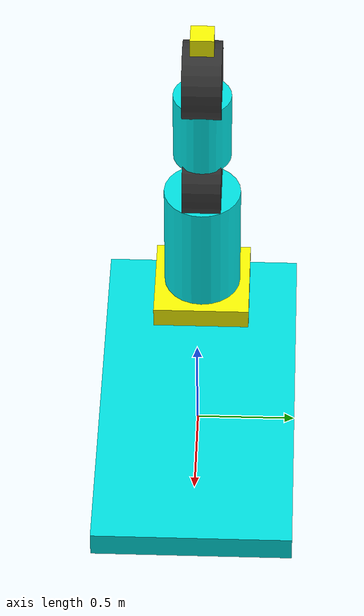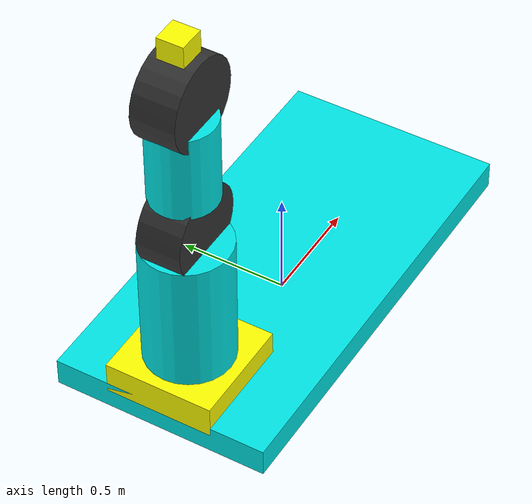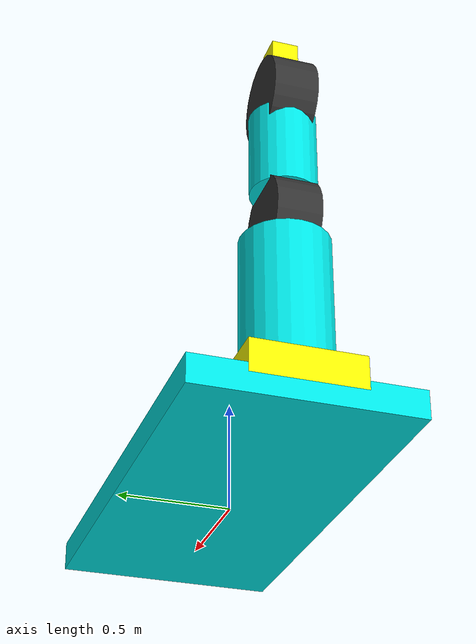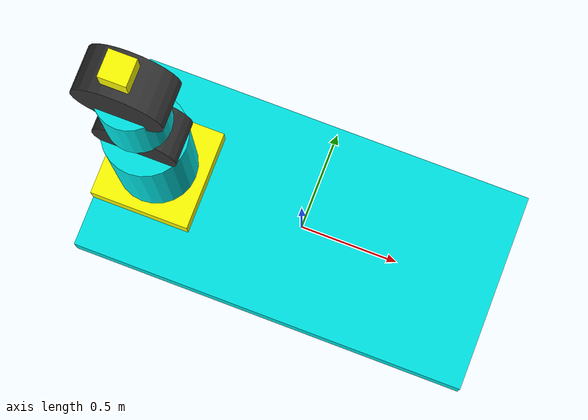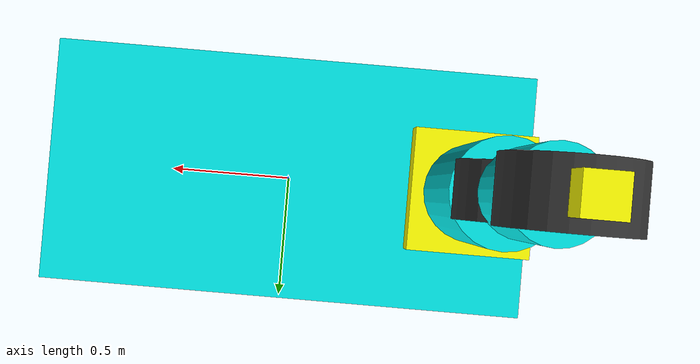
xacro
<?xml version = "1.0" ?>
<robot name="two_link" xmlns:xacro="http://www.ros.org/wiki/xacro">

<xacro:include filename="$(find robot_arm_pkg)/urdf/robot .gazebo" />

	<!-- * * * Link Definitions * * * -->

    <link  name= "world"></link>

    <joint name="base_joint" type="fixed">
        <origin xyz="0 0 0" rpy="0 0 0"/>
        <parent link="world"/>
        <child link="base_link"/>

    </joint>

 	<link name="base_link">
		<visual>
		    <origin xyz="0 0 0.1" rpy="0 0 0"/>
			<geometry>
				<box size="2 1 0.13"/>
			</geometry>
			<material name="Cyan1">
	       		<color rgba="0 0.9 0.9 1.0"/>
	     	</material>
		</visual>
		<collision>
		<origin xyz="0 0 0" rpy="0 0 0"/>
		<geometry>
		<box size="2 1 0.3"/>
		</geometry>
		</collision>
		<inertial>
		<origin xyz="0 0 0" rpy="0 0 0"/>
		<mass value="0.5"/>
		<inertia
		ixx="0.1" ixy="0.0" ixz="0.0"
		iyy="0.1" iyz="0.0"
		izz="0.1"/>
		</inertial>
</link>

    <joint name="slider_joint" type="prismatic">
        <origin xyz="-0.75 0 0.1" rpy="0 0 0"/>
        <parent link="base_link"/>
        <child link="slider_link"/>
        <axis xyz="1 0 0"/>
        <limit lower="0" upper="0.75" velocity="100" effort="100"/>
    </joint>

  	<link name="slider_link">
		<visual>
		    <origin xyz="0 0 0.1" rpy="0 0 0"/>
			<geometry>
				<box size="0.5 0.5 0.15"/>
			</geometry>
			<material name="yellow">
	       		<color rgba="1 1 0 1"/>
	     	</material>
		</visual>
		<collision>
		<origin xyz="0 0 0" rpy="0 0 0"/>
		<geometry>
		<box size="0.5 0.5 0.3"/>
		</geometry>
		</collision>
		<inertial>
		<origin xyz="0 0 0" rpy="0 0 0"/>
		<mass value="0.5"/>
		<inertia
		ixx="0.1" ixy="0.0" ixz="0.0"
		iyy="0.1" iyz="0.0"
		izz="0.1"/>
		</inertial>
</link>

    <joint name="rotating_joint" type="revolute">
        <origin xyz="0 0 0.1" rpy="0 0 0"/>
        <parent link="slider_link"/>
        <child link="rotating_link"/>
        <axis xyz="0 0 1"/>
        <limit effort="1000.0" lower="-1.40" upper="1.40" velocity="0.5"/>
    </joint>

  	<link name="rotating_link">
		<visual>
		    <origin xyz="0 0 0.35" rpy="0 0 0"/>
			<geometry>
				<cylinder radius="0.2" length="0.7"/>
			</geometry>
			<material name="Cyan1">
	       		<color rgba="0 0.9 0.9 1.0"/>
	     	</material>
		</visual>
		<collision>
		<origin xyz="0 0 0" rpy="0 0 0"/>
		<geometry>
		<box size="0.2 0.2 0.15"/>
		</geometry>
		</collision>
		<inertial>
		<origin xyz="0 0 0" rpy="0 0 0"/>
		<mass value="0.5"/>
		<inertia
		ixx="0.1" ixy="0.0" ixz="0.0"
		iyy="0.1" iyz="0.0"
		izz="0.1"/>
		</inertial>
</link>

    <joint name="joint1_joint" type="revolute">
        <axis xyz="0 1 0"/>
        <limit effort="1000.0" lower="0" upper="1.0472" velocity="0.5"/>
        <origin rpy="0 0 0" xyz="0 0 0.8"/>
        <parent link="rotating_link"/>
        <child link="link1"/>
    </joint>

 	<link name="link1">
		<visual>
		    <origin xyz="0 0 0" rpy="1.57079633 0 0"/>
			<geometry>
				<cylinder radius="0.2" length="0.2"/>
			</geometry>
			<material name="Black1">
	       		<color rgba="0.2 0.2 0.2 1.0"/>
	     	</material>
		</visual>

    <collision>
		<origin xyz="0 0 0.1" rpy="1.57079633 0 0"/>
		<geometry>
		<cylinder radius="0.2" length="0.3"/>
		</geometry>
	</collision>
		<inertial>
		    <origin xyz="0 0 0" rpy="0 0 0"/>
		    <mass value="0.5"/>
    		<inertia
		        ixx="0.1" ixy="0.0" ixz="0.0"
		        iyy="0.1" iyz="0.0"
		        izz="0.1"/>
        </inertial>
	</link>

    <joint name="rotating2_joint" type="revolute">
        <origin xyz="0 0 0.25" rpy="0 0 0"/>
        <parent link="link1"/>
        <child link="rotating2_link"/>
        <axis xyz="0 0 1"/>
        <limit effort="1000.0" lower="-1" upper="1" velocity="0.5"/>
    </joint>

  	<link name="rotating2_link">
		<visual>
		    <origin xyz="0 0 0.1" rpy="0 0 0"/>
			<geometry>
				<cylinder radius="0.15" length="0.4"/>
			</geometry>
			<material name="Cyan1">
	       		<color rgba="0 0.9 0.9 1.0"/>
	     	</material>
		</visual>
		<collision>
		<origin xyz="0 0 0" rpy="0 0 0"/>
		<geometry>
		<box size="0.2 0.2 0.15"/>
		</geometry>
		</collision>
		<inertial>
		<origin xyz="0 0 0" rpy="0 0 0"/>
		<mass value="0.5"/>
		<inertia
		ixx="0.1" ixy="0.0" ixz="0.0"
		iyy="0.1" iyz="0.0"
		izz="0.1"/>
		</inertial>
</link>

    <joint name="joint3_joint" type="revolute">
        <axis xyz="0 1 0"/>
        <limit effort="1000.0" lower="-1.0472" upper="2" velocity="0.5"/>
        <origin rpy="0 0 0" xyz="0 0 0.4"/>
        <parent link="rotating2_link"/>
        <child link="link2"/>
    </joint>

 	<link name="link2">
		<visual>
		    <origin xyz="0 0 0" rpy="1.57079633 0 0"/>
			<geometry>
				<cylinder radius="0.2" length="0.2"/>
			</geometry>
			<material name="Black1">
	       		<color rgba="0.2 0.2 0.2 1.0"/>
	     	</material>
		</visual>

    <collision>
		<origin xyz="0 0 0" rpy="1.57079633 0 0"/>
		<geometry>
		<cylinder radius="0.2" length="0.3"/>
		</geometry>
	</collision>
		<inertial>
		    <origin xyz="0 0 0" rpy="0 0 0"/>
		    <mass value="0.5"/>
    		<inertia
		        ixx="0.1" ixy="0.0" ixz="0.0"
		        iyy="0.1" iyz="0.0"
		        izz="0.1"/>
        </inertial>
	</link>

	<!-- Size of square 'camera' box -->
 	<xacro:property name="camera_link" value="0.05" />
	<joint name="cam_link" type="fixed">
        <origin rpy="0 0 0" xyz="0 0 0.25"/>
        <parent link="link2"/>
        <child link="camera"/>
    </joint>

 	<link name="camera">
		<visual>
		    <origin xyz="0 0 0" rpy="0 0 0"/>
			<geometry>
				<box size="0.12 0.12 0.1"/>
			</geometry>
			<material name="Yellow">
	       		<color rgba="1 1 0 1"/>
	     	</material>
		</visual>

    <collision>
		<origin xyz="0 0 0" rpy="0 0 0"/>
		<geometry>
		<box size="0.12 0.12 0.1"/>
		</geometry>
	</collision>
		<inertial>
		    <origin xyz="0 0 0" rpy="0 0 0"/>
		    <mass value="0.05"/>
    		<inertia
		        ixx="0.1" ixy="0.0" ixz="0.0"
		        iyy="0.1" iyz="0.0"
		        izz="0.1"/>
        </inertial>
	</link>

<xacro:include filename="$(find robot)/urdf/robot_arm.gazebo" />

<transmission name="tran1">
    <type>transmission_interface/SimpleTransmission</type>
    <joint name="base_link__link_01">
      <hardwareInterface>hardware_interface/EffortJointInterface</hardwareInterface>
    </joint>
    <actuator name="motor1">
      <hardwareInterface>hardware_interface/EffortJointInterface</hardwareInterface>
      <mechanicalReduction>1</mechanicalReduction>
    </actuator>
  </transmission>

   <!-- ros_control plugin -->
  <gazebo>
    <plugin name="gazebo_ros_control" filename="libgazebo_ros_control.so">
      <robotNamespace>/rrbot</robotNamespace>
      <robotSimType>gazebo_ros_control/DefaultRobotHWSim</robotSimType>
    </plugin>
  </gazebo>

</robot>
